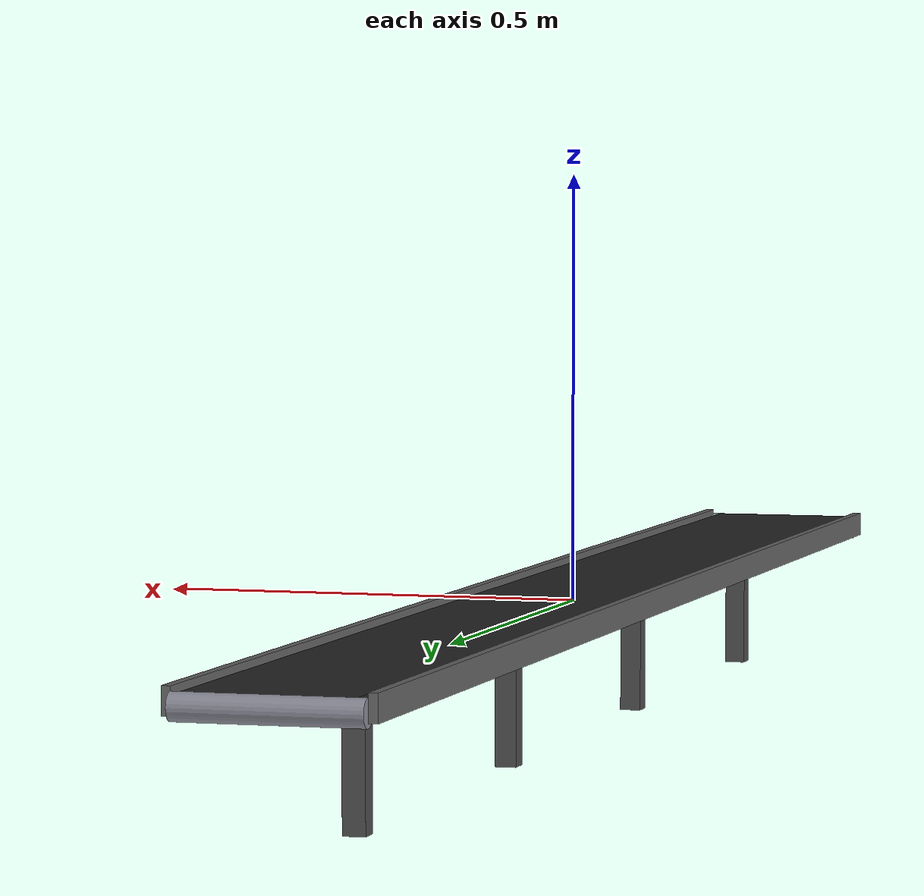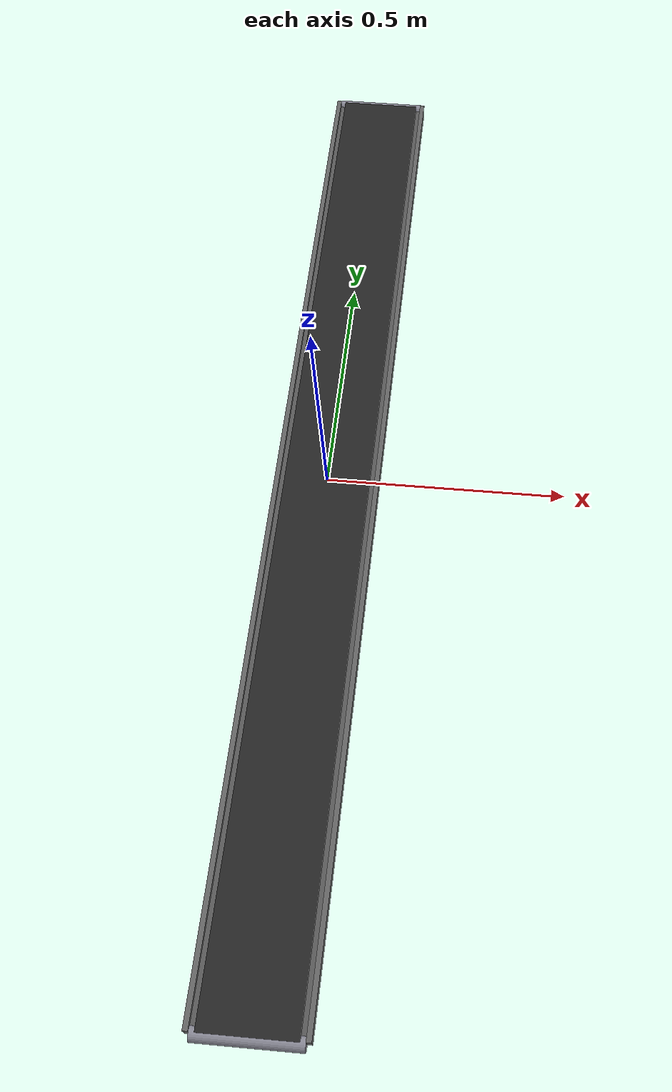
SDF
<?xml version="1.0" ?>
<sdf version="1.8">
  <model name="conveyor_belt">

    <!-- Static base frame — oriented along Y axis, anchored to world -->
    <link name="belt_frame">
      <inertial>
        <mass>100.0</mass>
        <inertia>
          <ixx>1.0</ixx><iyy>1.0</iyy><izz>1.0</izz>
          <ixy>0</ixy><ixz>0</ixz><iyz>0</iyz>
        </inertia>
      </inertial>

      <!-- Main frame collision -->
      <collision name="frame_col">
        <geometry>
          <!-- 0.2m wide (X), 2.2m long (Y), 0.02m thick (Z) -->
          <box><size>0.2 2.2 0.02</size></box>
        </geometry>
      </collision>

      <!-- Main frame visual -->
      <visual name="frame_vis">
        <geometry>
          <box><size>0.2 2.2 0.02</size></box>
        </geometry>
        <material>
          <ambient>0.35 0.35 0.35 1</ambient>
          <diffuse>0.35 0.35 0.35 1</diffuse>
        </material>
      </visual>

      <!-- Roller at far end (y=+1.1) — cylinder oriented along X -->
      <visual name="roller_far">
        <pose>0 1.1 0 0 1.5708 0</pose>
        <geometry>
          <cylinder><radius>0.015</radius><length>0.2</length></cylinder>
        </geometry>
        <material>
          <ambient>0.55 0.55 0.6 1</ambient>
          <diffuse>0.55 0.55 0.6 1</diffuse>
        </material>
      </visual>

      <!-- Roller at near end (y=-1.1) — cylinder oriented along X -->
      <visual name="roller_near">
        <pose>0 -1.1 0 0 1.5708 0</pose>
        <geometry>
          <cylinder><radius>0.015</radius><length>0.2</length></cylinder>
        </geometry>
        <material>
          <ambient>0.55 0.55 0.6 1</ambient>
          <diffuse>0.55 0.55 0.6 1</diffuse>
        </material>
      </visual>

      <!-- Left side rail (x=+0.105) -->
      <visual name="rail_left">
        <pose>0.105 0 0.005 0 0 0</pose>
        <geometry>
          <box><size>0.01 2.2 0.03</size></box>
        </geometry>
        <material>
          <ambient>0.4 0.4 0.4 1</ambient>
          <diffuse>0.4 0.4 0.4 1</diffuse>
        </material>
      </visual>

      <!-- Right side rail (x=-0.105) -->
      <visual name="rail_right">
        <pose>-0.105 0 0.005 0 0 0</pose>
        <geometry>
          <box><size>0.01 2.2 0.03</size></box>
        </geometry>
        <material>
          <ambient>0.4 0.4 0.4 1</ambient>
          <diffuse>0.4 0.4 0.4 1</diffuse>
        </material>
      </visual>

      <!-- 4 support legs evenly spaced along the belt -->
      <visual name="leg_0">
        <pose>0 -0.825 -0.085 0 0 0</pose>
        <geometry>
          <box><size>0.025 0.025 0.15</size></box>
        </geometry>
        <material>
          <ambient>0.3 0.3 0.3 1</ambient>
          <diffuse>0.3 0.3 0.3 1</diffuse>
        </material>
      </visual>

      <visual name="leg_1">
        <pose>0 -0.275 -0.085 0 0 0</pose>
        <geometry>
          <box><size>0.025 0.025 0.15</size></box>
        </geometry>
        <material>
          <ambient>0.3 0.3 0.3 1</ambient>
          <diffuse>0.3 0.3 0.3 1</diffuse>
        </material>
      </visual>

      <visual name="leg_2">
        <pose>0 0.275 -0.085 0 0 0</pose>
        <geometry>
          <box><size>0.025 0.025 0.15</size></box>
        </geometry>
        <material>
          <ambient>0.3 0.3 0.3 1</ambient>
          <diffuse>0.3 0.3 0.3 1</diffuse>
        </material>
      </visual>

      <visual name="leg_3">
        <pose>0 0.825 -0.085 0 0 0</pose>
        <geometry>
          <box><size>0.025 0.025 0.15</size></box>
        </geometry>
        <material>
          <ambient>0.3 0.3 0.3 1</ambient>
          <diffuse>0.3 0.3 0.3 1</diffuse>
        </material>
      </visual>

    </link>

    <!-- Moving belt surface — sits on top of frame, slides along Y -->
    <link name="belt_surface">
      <pose>0 0 0.0125 0 0 0</pose>
      <inertial>
        <mass>1.0</mass>
        <inertia>
          <ixx>0.01</ixx><iyy>0.01</iyy><izz>0.01</izz>
          <ixy>0</ixy><ixz>0</ixz><iyz>0</iyz>
        </inertia>
      </inertial>
      <collision name="surface_col">
        <geometry>
          <!-- Thin sliding surface: 0.18m wide (X), 2.2m long (Y), 0.005m thick (Z) -->
          <box><size>0.18 2.2 0.005</size></box>
        </geometry>
        <surface>
          <friction>
            <ode>
              <mu>100.0</mu>
              <mu2>100.0</mu2>
              <fdir1>0 1 0</fdir1>
            </ode>
            <torsional>
              <coefficient>1.0</coefficient>
              <use_patch_radius>true</use_patch_radius>
              <patch_radius>0.05</patch_radius>
            </torsional>
          </friction>
          <contact>
            <ode>
              <kp>1e6</kp>
              <kd>100.0</kd>
              <max_vel>0.5</max_vel>
              <min_depth>1e-5</min_depth>
            </ode>
          </contact>
        </surface>
      </collision>
      <visual name="surface_vis">
        <geometry>
          <box><size>0.18 2.2 0.005</size></box>
        </geometry>
        <material>
          <ambient>0.1 0.1 0.1 1</ambient>
          <diffuse>0.15 0.15 0.15 1</diffuse>
        </material>
      </visual>
    </link>

    <!-- Pins belt_frame to world -->
    <joint name="world_fixed" type="fixed">
      <parent>world</parent>
      <child>belt_frame</child>
    </joint>

    <!-- Belt surface slides along Y axis -->
    <joint name="belt_joint" type="prismatic">
      <parent>belt_frame</parent>
      <child>belt_surface</child>
      <axis>
        <xyz>0 1 0</xyz>
        <limit>
          <lower>-100</lower>
          <upper>100</upper>
          <effort>1000</effort>
          <velocity>2.0</velocity>
        </limit>
        <dynamics>
          <damping>0.1</damping>
          <friction>0.0</friction>
        </dynamics>
      </axis>
    </joint>

    <!-- JointController: controls belt_joint velocity -->
    <plugin
      filename="gz-sim-joint-controller-system"
      name="gz::sim::systems::JointController">
      <joint_name>belt_joint</joint_name>
      <topic>/conveyor_belt/cmd_vel</topic>
      <use_force_commands>false</use_force_commands>
    </plugin>

  </model>
</sdf>
